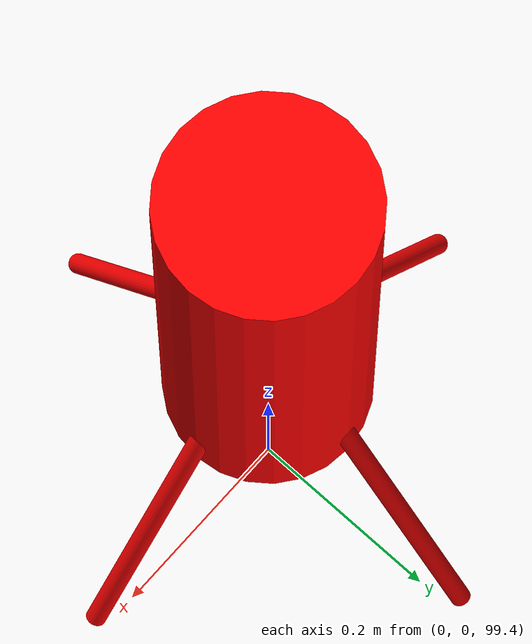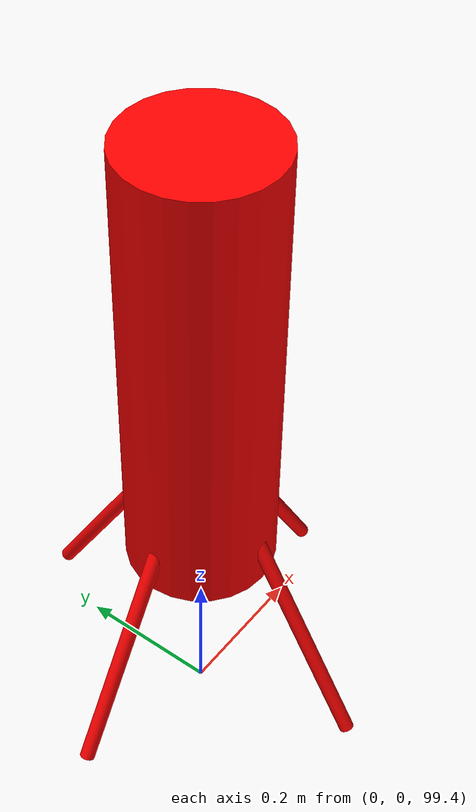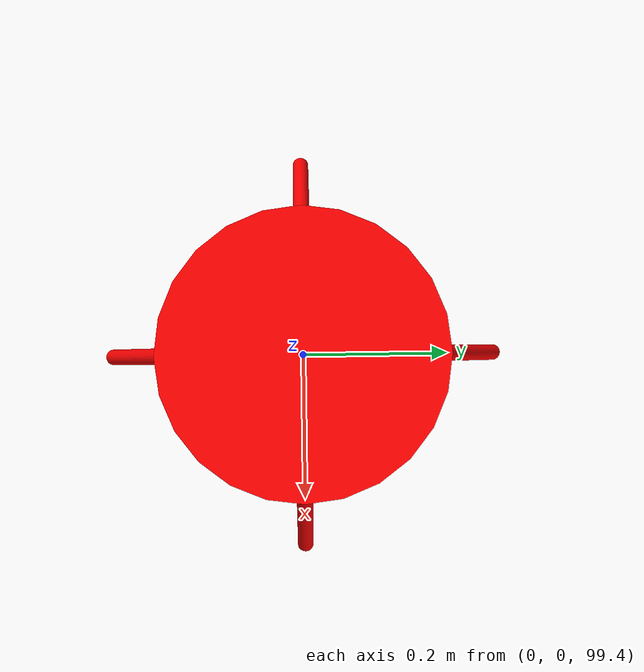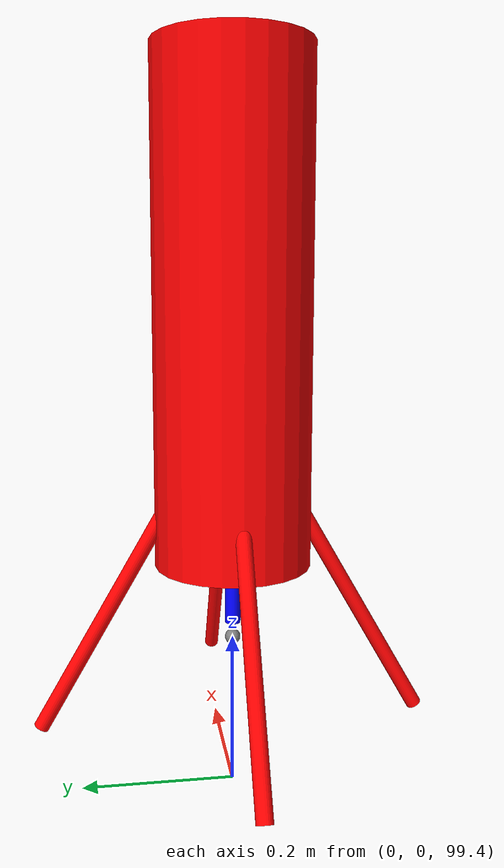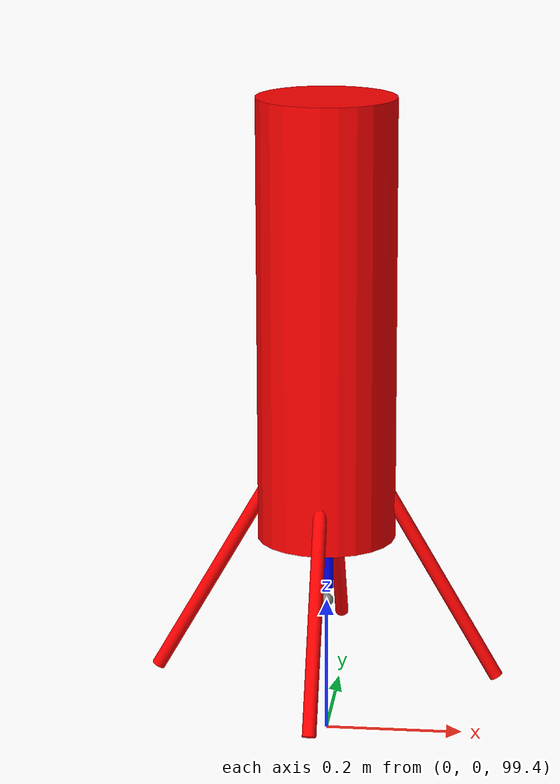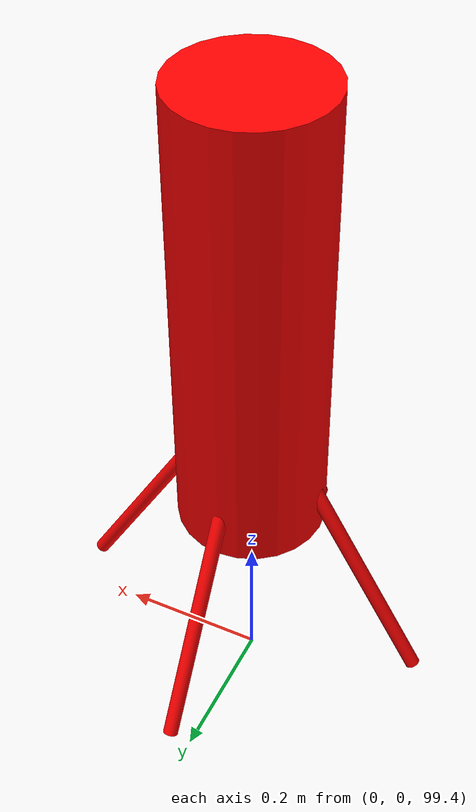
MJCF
<mujoco>
    <!-- Define assets - use the builtin checkerboard texture for the ground plane -->
    <asset>
        <texture name="grid" type="2d" builtin="checker" rgb1=".1 .2 .3"
            rgb2=".2 .3 .4" width="300" height="300" mark="none"/>
        <material name="grid" texture="grid" texrepeat="1 1"
            texuniform="true" reflectance=".2"/>
    </asset>

    <!-- Define actual objects in the sim -->
    <worldbody>
        <!-- Define the lighting source-->
        <light name="lightMain" mode = "fixed" pos="0 0 1"/>

        <!-- Define the floor as a plane -->
        <geom name="floor" type="plane" pos="0 0 -.1" size="200 200 .1" material="grid"/>

        <!-- Define the rocket -->
        <!-- I assume you can also attach child bodies to it? not sure how that works -->
        <body name="rocket" pos="0 0 100" euler="0 0 0">
            <!-- Define a light that follows the rocket-->
            <light name="light" mode = "track" pos="0 0 1"/>
            <!-- Define a camera that follows the rocket-->
            <camera name="fixed" mode = "track" pos="0 -1.3 -.1" xyaxes="1 0 0 0 1 2"/>

            <!-- Define joint as free, allowing rocket to move in 6DOF (others include ball, slide, hinge) -->
            <joint name="free" type="free"/>

            <!-- Define the actual geometry - we are just going to use a cylinder -->
            <geom name="body" type="cylinder" pos="0 0 0.0195" size=".1 .3195" rgba="1 0 0 1" mass="10" />

            <!-- Define legs -->
            <body name="leg_1" pos="0 0.1 -0.25" euler="30 0 0">
                <geom name="legbody1" type="cylinder" size=".01 .3" rgba="1 0 0 1" />
            </body>
            <body name="leg_2" pos="0 -0.1 -0.25" euler="-30 0 0">
                <geom name="legbody2" type="cylinder" size=".01 .3" rgba="1 0 0 1" />
            </body>
            <body name="leg_3" pos="-0.1 0 -0.25" euler="0 30 0">
                <geom name="legbody3" type="cylinder" size=".01 .3" rgba="1 0 0 1" />
            </body>
            <body name="leg_4" pos="0.1 0 -0.25" euler="0 -30 0">
                <geom name="legbody4" type="cylinder" size=".01 .3" rgba="1 0 0 1" />
            </body>

            <!-- Define an origin TODO: is this the best way? -->
            <site name="rocket_origin" pos="0 0 0" size="0.05"/>

            <!-- Define engine-->
            <body name="engine" pos="0 0 -0.35" euler="0 0 0">
                <joint name="engine_gimbal" type="ball" />
                <geom name="engine" type="cylinder" size=".01 .03" rgba="0 0 1 1" />
                <!-- Define a thrust point for the actuators to attach to -->
                <site name="thrust_point" pos="0 0 -0.05" size="0.01"/>
            </body>

        </body>
    </worldbody>

    <!-- Define the actuator model - we just model it as 3 motors that can apply XYZ forces at the thrust point -->
    <actuator>
        <position name="gimbal_x" joint="engine_gimbal" ctrlrange="-0.35 0.35" kv="0.001" gear="-1 0 0 0 0 0"/>
        <position name="gimbal_y" joint="engine_gimbal" ctrlrange="-0.35 0.35" kv="0.001" gear="0 -1 0 0 0 0"/>
        <motor name="roll" site="rocket_origin" gear="0 0 0 0 0 1"/>
        <motor name="thrust" site="thrust_point" gear="0 0 1 0 0 0"/>
    </actuator>

    <!-- Define the sensor model-->
    <sensor>
        <!-- IMU -->
        <accelerometer name="accel" noise="0.001" site="rocket_origin" />
        <gyro name="imu" noise="0.001" site="rocket_origin" />
        <magnetometer name="mag" noise="0.001" site="rocket_origin" />
    </sensor>
</mujoco>
